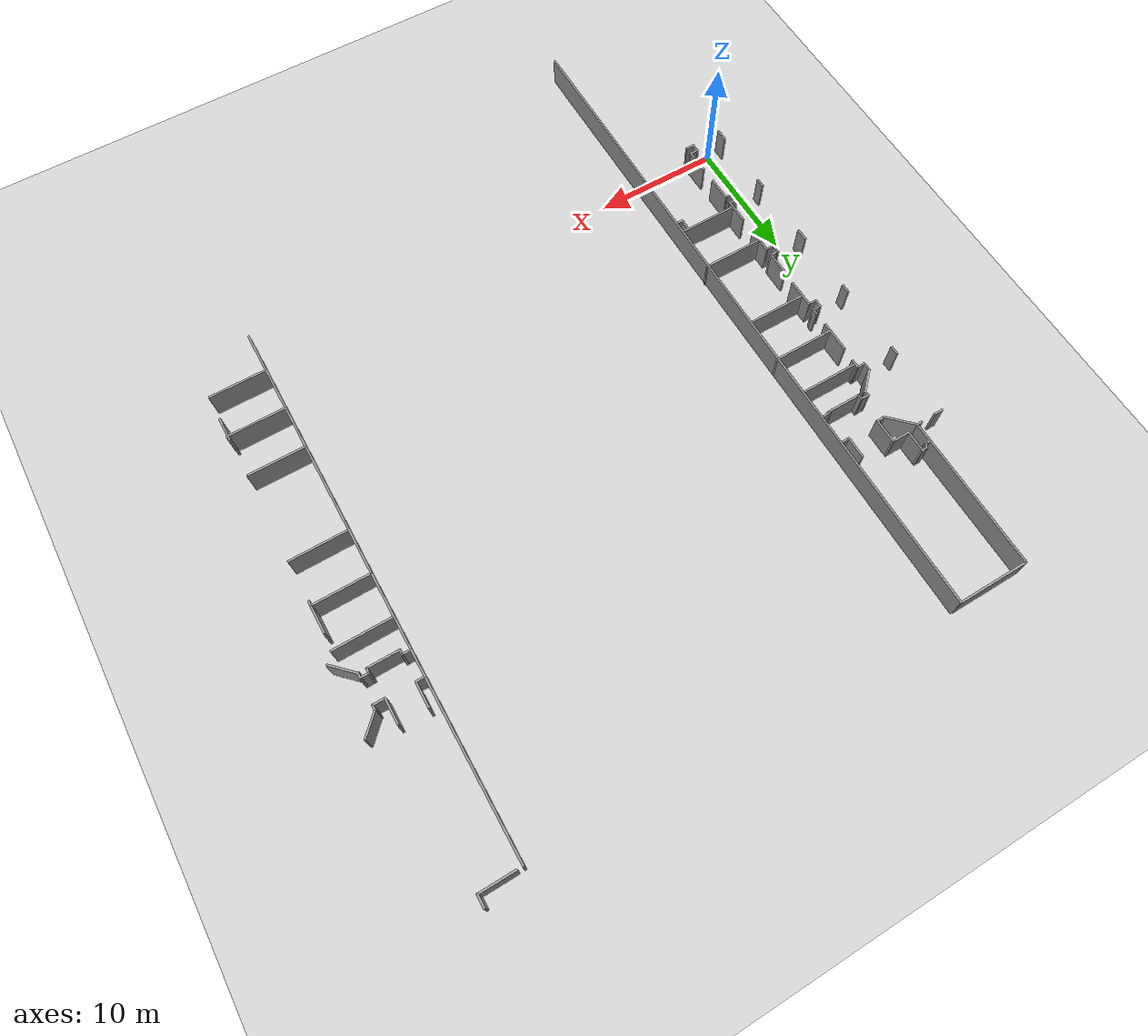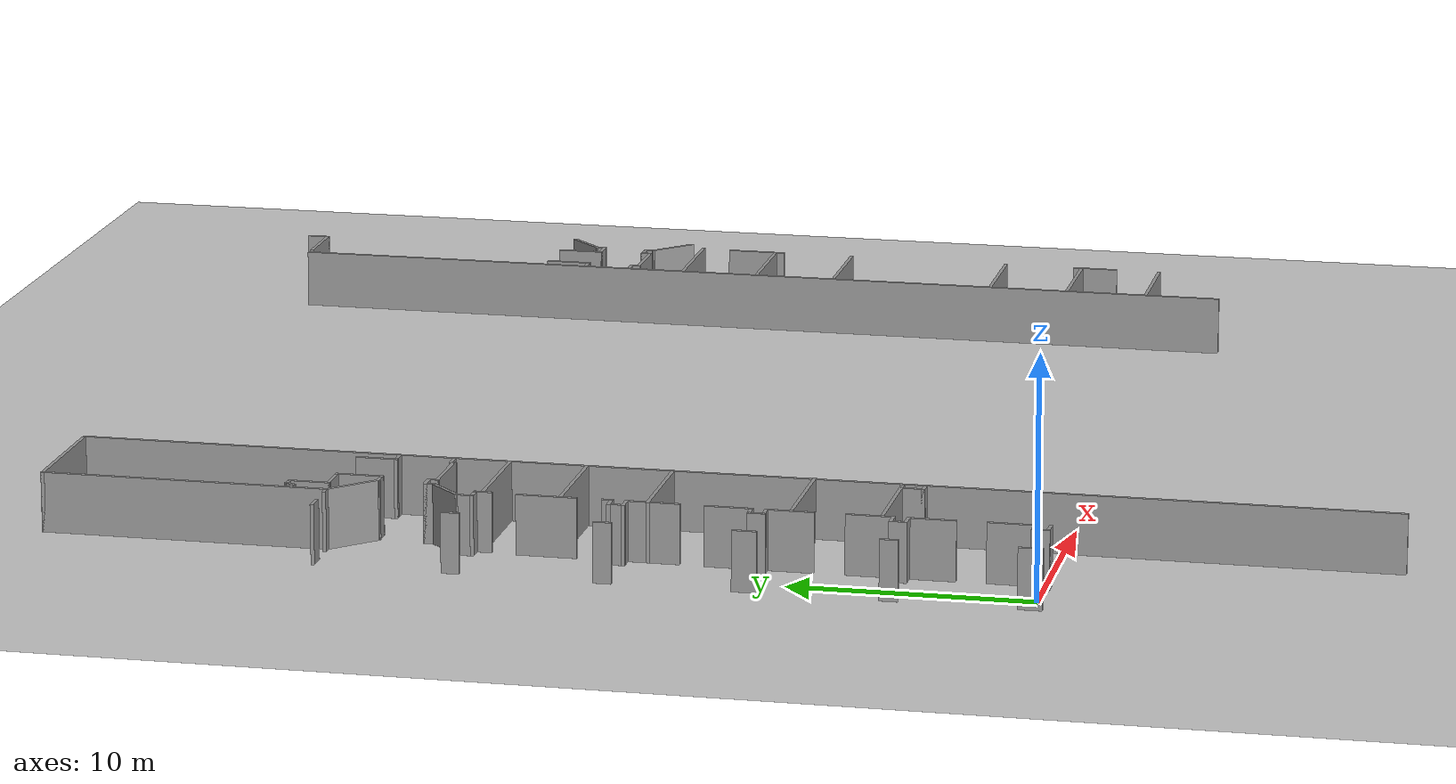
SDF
<sdf version="1.6">
 <world name="default">
  <model name="ground_plane">
   <static>1</static>
   <link name="link">
    <collision name="collision">
     <geometry><plane><normal>0 0 1</normal><size>200 100</size></plane></geometry>
     <surface><friction><ode><mu>100</mu><mu2>50</mu2></ode></friction></surface>
    </collision>
    <visual name="visual">
     <cast_shadows>0</cast_shadows>
     <geometry><plane><normal>0 0 1</normal><size>200 100</size></plane></geometry>
     <material>
      <script><uri>file://media/materials/scripts/gazebo.material</uri><name>Gazebo/Grey</name></script>
     </material>
    </visual>
   </link>
  </model>
  <model name="LuterFloorPlan">
   <pose>-8.27259 7.62647 0 0 -0 0</pose>
   <link name="Wall_1024">
    <collision name="Wall_1024_Collision">
     <geometry><box><size>42.25 0.15 2.5</size></box></geometry>
     <pose>0 0 1.25 0 -0 0</pose>
    </collision>
    <visual name="Wall_1024_Visual">
     <pose>0 0 1.25 0 -0 0</pose>
     <geometry><box><size>42.25 0.15 2.5</size></box></geometry>
     <material>
      <script><uri>file://media/materials/scripts/gazebo.material</uri><name>Gazebo/Grey</name></script>
      <ambient>1 1 1 1</ambient>
     </material>
    </visual>
    <pose>47.5967 11.6687 0 0 -0 1.5708</pose>
   </link>
   <link name="Wall_1026">
    <collision name="Wall_1026_Collision">
     <geometry><box><size>2.75 0.15 2.5</size></box></geometry>
     <pose>0 0 1.25 0 -0 0</pose>
    </collision>
    <visual name="Wall_1026_Visual">
     <pose>0 0 1.25 0 -0 0</pose>
     <geometry><box><size>2.75 0.15 2.5</size></box></geometry>
     <material>
      <script><uri>file://media/materials/scripts/gazebo.material</uri><name>Gazebo/Grey</name></script>
      <ambient>1 1 1 1</ambient>
     </material>
    </visual>
    <pose>49.3708 32.7214 0 0 -0 0</pose>
   </link>
   <link name="Wall_1027">
    <collision name="Wall_1027_Collision">
     <geometry><box><size>1 0.15 2.5</size></box></geometry>
     <pose>0 0 1.25 0 -0 0</pose>
    </collision>
    <visual name="Wall_1027_Visual">
     <pose>0 0 1.25 0 -0 0</pose>
     <geometry><box><size>1 0.15 2.5</size></box></geometry>
     <material>
      <script><uri>file://media/materials/scripts/gazebo.material</uri><name>Gazebo/Grey</name></script>
      <ambient>1 1 1 1</ambient>
     </material>
    </visual>
    <pose>50.6708 33.1464 0 0 -0 1.5708</pose>
   </link>
   <link name="Wall_1067">
    <collision name="Wall_1067_Collision">
     <geometry><box><size>4.5 0.15 2.5</size></box></geometry>
     <pose>0 0 1.25 0 -0 0</pose>
    </collision>
    <visual name="Wall_1067_Visual">
     <pose>0 0 1.25 0 -0 0</pose>
     <geometry><box><size>4.5 0.15 2.5</size></box></geometry>
     <material>
      <script><uri>file://media/materials/scripts/gazebo.material</uri><name>Gazebo/Grey</name></script>
      <ambient>1 1 1 1</ambient>
     </material>
    </visual>
    <pose>49.7886 -6.13574 0 0 -0 0</pose>
   </link>
   <link name="Wall_1083">
    <collision name="Wall_1083_Collision">
     <geometry><box><size>2 0.15 2.5</size></box></geometry>
     <pose>0 0 1.25 0 -0 0</pose>
    </collision>
    <visual name="Wall_1083_Visual">
     <pose>0 0 1.25 0 -0 0</pose>
     <geometry><box><size>2 0.15 2.5</size></box></geometry>
     <material>
      <script><uri>file://media/materials/scripts/gazebo.material</uri><name>Gazebo/Grey</name></script>
      <ambient>1 1 1 1</ambient>
     </material>
    </visual>
    <pose>51.9891 -3.19587 0 0 -0 1.5708</pose>
   </link>
   <link name="Wall_1090">
    <collision name="Wall_1090_Collision">
     <geometry><box><size>4.5 0.15 2.5</size></box></geometry>
     <pose>0 0 1.25 0 -0 0</pose>
    </collision>
    <visual name="Wall_1090_Visual">
     <pose>0 0 1.25 0 -0 0</pose>
     <geometry><box><size>4.5 0.15 2.5</size></box></geometry>
     <material>
      <script><uri>file://media/materials/scripts/gazebo.material</uri><name>Gazebo/Grey</name></script>
      <ambient>1 1 1 1</ambient>
     </material>
    </visual>
    <pose>49.8815 -2.57607 0 0 -0 0</pose>
   </link>
   <link name="Wall_1109">
    <collision name="Wall_1109_Collision">
     <geometry><box><size>4.5 0.15 2.5</size></box></geometry>
     <pose>0 0 1.25 0 -0 0</pose>
    </collision>
    <visual name="Wall_1109_Visual">
     <pose>0 0 1.25 0 -0 0</pose>
     <geometry><box><size>4.5 0.15 2.5</size></box></geometry>
     <material>
      <script><uri>file://media/materials/scripts/gazebo.material</uri><name>Gazebo/Grey</name></script>
      <ambient>1 1 1 1</ambient>
     </material>
    </visual>
    <pose>49.7844 0.926516 0 0 -0 0</pose>
   </link>
   <link name="Wall_1125">
    <collision name="Wall_1125_Collision">
     <geometry><box><size>4.5 0.15 2.5</size></box></geometry>
     <pose>0 0 1.25 0 -0 0</pose>
    </collision>
    <visual name="Wall_1125_Visual">
     <pose>0 0 1.25 0 -0 0</pose>
     <geometry><box><size>4.5 0.15 2.5</size></box></geometry>
     <material>
      <script><uri>file://media/materials/scripts/gazebo.material</uri><name>Gazebo/Grey</name></script>
      <ambient>1 1 1 1</ambient>
     </material>
    </visual>
    <pose>49.8376 8.12345 0 0 -0 0</pose>
   </link>
   <link name="Wall_1127">
    <collision name="Wall_1127_Collision">
     <geometry><box><size>4.5 0.15 2.5</size></box></geometry>
     <pose>0 0 1.25 0 -0 0</pose>
    </collision>
    <visual name="Wall_1127_Visual">
     <pose>0 0 1.25 0 -0 0</pose>
     <geometry><box><size>4.5 0.15 2.5</size></box></geometry>
     <material>
      <script><uri>file://media/materials/scripts/gazebo.material</uri><name>Gazebo/Grey</name></script>
      <ambient>1 1 1 1</ambient>
     </material>
    </visual>
    <pose>49.807 11.6872 0 0 -0 0</pose>
   </link>
   <link name="Wall_1128">
    <collision name="Wall_1128_Collision">
     <geometry><box><size>0.5 0.15 2.5</size></box></geometry>
     <pose>0 0 1.25 0 -0 0</pose>
    </collision>
    <visual name="Wall_1128_Visual">
     <pose>0 0 1.25 0 -0 0</pose>
     <geometry><box><size>0.5 0.15 2.5</size></box></geometry>
     <material>
      <script><uri>file://media/materials/scripts/gazebo.material</uri><name>Gazebo/Grey</name></script>
      <ambient>1 1 1 1</ambient>
     </material>
    </visual>
    <pose>51.982 11.5122 0 0 0 -1.5708</pose>
   </link>
   <link name="Wall_1130">
    <collision name="Wall_1130_Collision">
     <geometry><box><size>2.25 0.15 2.5</size></box></geometry>
     <pose>0 0 1.25 0 -0 0</pose>
    </collision>
    <visual name="Wall_1130_Visual">
     <pose>0 0 1.25 0 -0 0</pose>
     <geometry><box><size>2.25 0.15 2.5</size></box></geometry>
     <material>
      <script><uri>file://media/materials/scripts/gazebo.material</uri><name>Gazebo/Grey</name></script>
      <ambient>1 1 1 1</ambient>
     </material>
    </visual>
    <pose>51.982 12.7372 0 0 -0 1.5708</pose>
   </link>
   <link name="Wall_1132">
    <collision name="Wall_1132_Collision">
     <geometry><box><size>4.5 0.15 2.5</size></box></geometry>
     <pose>0 0 1.25 0 -0 0</pose>
    </collision>
    <visual name="Wall_1132_Visual">
     <pose>0 0 1.25 0 -0 0</pose>
     <geometry><box><size>4.5 0.15 2.5</size></box></geometry>
     <material>
      <script><uri>file://media/materials/scripts/gazebo.material</uri><name>Gazebo/Grey</name></script>
      <ambient>1 1 1 1</ambient>
     </material>
    </visual>
    <pose>49.8988 15.1133 0 0 -0 0</pose>
   </link>
   <link name="Wall_1138">
    <collision name="Wall_1138_Collision">
     <geometry><box><size>2.25 0.15 2.5</size></box></geometry>
     <pose>0 0 1.25 0 -0 0</pose>
    </collision>
    <visual name="Wall_1138_Visual">
     <pose>0 0 1.25 0 -0 0</pose>
     <geometry><box><size>2.25 0.15 2.5</size></box></geometry>
     <material>
      <script><uri>file://media/materials/scripts/gazebo.material</uri><name>Gazebo/Grey</name></script>
      <ambient>1 1 1 1</ambient>
     </material>
    </visual>
    <pose>51.9313 16.5558 0 0 -0 2.35619</pose>
   </link>
   <link name="Wall_1139">
    <collision name="Wall_1139_Collision">
     <geometry><box><size>0.5 0.15 2.5</size></box></geometry>
     <pose>0 0 1.25 0 -0 0</pose>
    </collision>
    <visual name="Wall_1139_Visual">
     <pose>0 0 1.25 0 -0 0</pose>
     <geometry><box><size>0.5 0.15 2.5</size></box></geometry>
     <material>
      <script><uri>file://media/materials/scripts/gazebo.material</uri><name>Gazebo/Grey</name></script>
      <ambient>1 1 1 1</ambient>
     </material>
    </visual>
    <pose>51.1889 17.4732 0 0 -0 1.5708</pose>
   </link>
   <link name="Wall_1140">
    <collision name="Wall_1140_Collision">
     <geometry><box><size>0.75 0.15 2.5</size></box></geometry>
     <pose>0 0 1.25 0 -0 0</pose>
    </collision>
    <visual name="Wall_1140_Visual">
     <pose>0 0 1.25 0 -0 0</pose>
     <geometry><box><size>0.75 0.15 2.5</size></box></geometry>
     <material>
      <script><uri>file://media/materials/scripts/gazebo.material</uri><name>Gazebo/Grey</name></script>
      <ambient>1 1 1 1</ambient>
     </material>
    </visual>
    <pose>50.8889 17.6482 0 0 -0 3.14159</pose>
   </link>
   <link name="Wall_1141">
    <collision name="Wall_1141_Collision">
     <geometry><box><size>0.5 0.15 2.5</size></box></geometry>
     <pose>0 0 1.25 0 -0 0</pose>
    </collision>
    <visual name="Wall_1141_Visual">
     <pose>0 0 1.25 0 -0 0</pose>
     <geometry><box><size>0.5 0.15 2.5</size></box></geometry>
     <material>
      <script><uri>file://media/materials/scripts/gazebo.material</uri><name>Gazebo/Grey</name></script>
      <ambient>1 1 1 1</ambient>
     </material>
    </visual>
    <pose>50.5889 17.4732 0 0 0 -1.5708</pose>
   </link>
   <link name="Wall_1142">
    <collision name="Wall_1142_Collision">
     <geometry><box><size>2.5 0.15 2.5</size></box></geometry>
     <pose>0 0 1.25 0 -0 0</pose>
    </collision>
    <visual name="Wall_1142_Visual">
     <pose>0 0 1.25 0 -0 0</pose>
     <geometry><box><size>2.5 0.15 2.5</size></box></geometry>
     <material>
      <script><uri>file://media/materials/scripts/gazebo.material</uri><name>Gazebo/Grey</name></script>
      <ambient>1 1 1 1</ambient>
     </material>
    </visual>
    <pose>49.4139 17.2982 0 0 -0 3.14159</pose>
   </link>
   <link name="Wall_1146">
    <collision name="Wall_1146_Collision">
     <geometry><box><size>0.5 0.15 2.5</size></box></geometry>
     <pose>0 0 1.25 0 -0 0</pose>
    </collision>
    <visual name="Wall_1146_Visual">
     <pose>0 0 1.25 0 -0 0</pose>
     <geometry><box><size>0.5 0.15 2.5</size></box></geometry>
     <material>
      <script><uri>file://media/materials/scripts/gazebo.material</uri><name>Gazebo/Grey</name></script>
      <ambient>1 1 1 1</ambient>
     </material>
    </visual>
    <pose>48.2389 17.4732 0 0 -0 1.5708</pose>
   </link>
   <link name="Wall_1147">
    <collision name="Wall_1147_Collision">
     <geometry><box><size>0.75 0.15 2.5</size></box></geometry>
     <pose>0 0 1.25 0 -0 0</pose>
    </collision>
    <visual name="Wall_1147_Visual">
     <pose>0 0 1.25 0 -0 0</pose>
     <geometry><box><size>0.75 0.15 2.5</size></box></geometry>
     <material>
      <script><uri>file://media/materials/scripts/gazebo.material</uri><name>Gazebo/Grey</name></script>
      <ambient>1 1 1 1</ambient>
     </material>
    </visual>
    <pose>47.9389 17.6482 0 0 -0 3.14159</pose>
   </link>
   <link name="Wall_1166">
    <collision name="Wall_1166_Collision">
     <geometry><box><size>0.75 0.15 2.5</size></box></geometry>
     <pose>0 0 1.25 0 -0 0</pose>
    </collision>
    <visual name="Wall_1166_Visual">
     <pose>0 0 1.25 0 -0 0</pose>
     <geometry><box><size>0.75 0.15 2.5</size></box></geometry>
     <material>
      <script><uri>file://media/materials/scripts/gazebo.material</uri><name>Gazebo/Grey</name></script>
      <ambient>1 1 1 1</ambient>
     </material>
    </visual>
    <pose>47.9579 19.6633 0 0 -0 0</pose>
   </link>
   <link name="Wall_1167">
    <collision name="Wall_1167_Collision">
     <geometry><box><size>2 0.15 2.5</size></box></geometry>
     <pose>0 0 1.25 0 -0 0</pose>
    </collision>
    <visual name="Wall_1167_Visual">
     <pose>0 0 1.25 0 -0 0</pose>
     <geometry><box><size>2 0.15 2.5</size></box></geometry>
     <material>
      <script><uri>file://media/materials/scripts/gazebo.material</uri><name>Gazebo/Grey</name></script>
      <ambient>1 1 1 1</ambient>
     </material>
    </visual>
    <pose>48.2579 20.5883 0 0 -0 1.5708</pose>
   </link>
   <link name="Wall_1169">
    <collision name="Wall_1169_Collision">
     <geometry><box><size>2 0.15 2.5</size></box></geometry>
     <pose>0 0 1.25 0 -0 0</pose>
    </collision>
    <visual name="Wall_1169_Visual">
     <pose>0 0 1.25 0 -0 0</pose>
     <geometry><box><size>2 0.15 2.5</size></box></geometry>
     <material>
      <script><uri>file://media/materials/scripts/gazebo.material</uri><name>Gazebo/Grey</name></script>
      <ambient>1 1 1 1</ambient>
     </material>
    </visual>
    <pose>50.3977 20.5338 0 0 0 -1.5708</pose>
   </link>
   <link name="Wall_1170">
    <collision name="Wall_1170_Collision">
     <geometry><box><size>1 0.15 2.5</size></box></geometry>
     <pose>0 0 1.25 0 -0 0</pose>
    </collision>
    <visual name="Wall_1170_Visual">
     <pose>0 0 1.25 0 -0 0</pose>
     <geometry><box><size>1 0.15 2.5</size></box></geometry>
     <material>
      <script><uri>file://media/materials/scripts/gazebo.material</uri><name>Gazebo/Grey</name></script>
      <ambient>1 1 1 1</ambient>
     </material>
    </visual>
    <pose>50.8227 19.6088 0 0 -0 0</pose>
   </link>
   <link name="Wall_1171">
    <collision name="Wall_1171_Collision">
     <geometry><box><size>0.5 0.15 2.5</size></box></geometry>
     <pose>0 0 1.25 0 -0 0</pose>
    </collision>
    <visual name="Wall_1171_Visual">
     <pose>0 0 1.25 0 -0 0</pose>
     <geometry><box><size>0.5 0.15 2.5</size></box></geometry>
     <material>
      <script><uri>file://media/materials/scripts/gazebo.material</uri><name>Gazebo/Grey</name></script>
      <ambient>1 1 1 1</ambient>
     </material>
    </visual>
    <pose>51.2477 19.7838 0 0 -0 1.5708</pose>
   </link>
   <link name="Wall_1172">
    <collision name="Wall_1172_Collision">
     <geometry><box><size>2 0.15 2.5</size></box></geometry>
     <pose>0 0 1.25 0 -0 0</pose>
    </collision>
    <visual name="Wall_1172_Visual">
     <pose>0 0 1.25 0 -0 0</pose>
     <geometry><box><size>2 0.15 2.5</size></box></geometry>
     <material>
      <script><uri>file://media/materials/scripts/gazebo.material</uri><name>Gazebo/Grey</name></script>
      <ambient>1 1 1 1</ambient>
     </material>
    </visual>
    <pose>51.9018 20.6129 0 0 -0 0.785398</pose>
   </link>
   <link name="Wall_634">
    <collision name="Wall_634_Collision">
     <geometry><box><size>12 0.15 2.5</size></box></geometry>
     <pose>0 0 1.25 0 -0 0</pose>
    </collision>
    <visual name="Wall_634_Visual">
     <pose>0 0 1.25 0 -0 0</pose>
     <geometry><box><size>12 0.15 2.5</size></box></geometry>
     <material>
      <script><uri>file://media/materials/scripts/gazebo.material</uri><name>Gazebo/Grey</name></script>
      <ambient>1 1 1 1</ambient>
     </material>
    </visual>
    <pose>9.57058 27.2459 0 0 0 -1.5708</pose>
   </link>
   <link name="Wall_636">
    <collision name="Wall_636_Collision">
     <geometry><box><size>5.5 0.15 2.5</size></box></geometry>
     <pose>0 0 1.25 0 -0 0</pose>
    </collision>
    <visual name="Wall_636_Visual">
     <pose>0 0 1.25 0 -0 0</pose>
     <geometry><box><size>5.5 0.15 2.5</size></box></geometry>
     <material>
      <script><uri>file://media/materials/scripts/gazebo.material</uri><name>Gazebo/Grey</name></script>
      <ambient>1 1 1 1</ambient>
     </material>
    </visual>
    <pose>12.2456 33.1709 0 0 -0 0</pose>
   </link>
   <link name="Wall_638">
    <collision name="Wall_638_Collision">
     <geometry><box><size>54.5 0.15 2.5</size></box></geometry>
     <pose>0 0 1.25 0 -0 0</pose>
    </collision>
    <visual name="Wall_638_Visual">
     <pose>0 0 1.25 0 -0 0</pose>
     <geometry><box><size>54.5 0.15 2.5</size></box></geometry>
     <material>
      <script><uri>file://media/materials/scripts/gazebo.material</uri><name>Gazebo/Grey</name></script>
      <ambient>1 1 1 1</ambient>
     </material>
    </visual>
    <pose>15.0566 5.95469 0 0 -0 1.5708</pose>
   </link>
   <link name="Wall_641">
    <collision name="Wall_641_Collision">
     <geometry><box><size>0.5 0.15 2.5</size></box></geometry>
     <pose>0 0 1.25 0 -0 0</pose>
    </collision>
    <visual name="Wall_641_Visual">
     <pose>0 0 1.25 0 -0 0</pose>
     <geometry><box><size>0.5 0.15 2.5</size></box></geometry>
     <material>
      <script><uri>file://media/materials/scripts/gazebo.material</uri><name>Gazebo/Grey</name></script>
      <ambient>1 1 1 1</ambient>
     </material>
    </visual>
    <pose>9.39558 21.3209 0 0 -0 3.14159</pose>
   </link>
   <link name="Wall_643">
    <collision name="Wall_643_Collision">
     <geometry><box><size>0.75 0.15 2.5</size></box></geometry>
     <pose>0 0 1.25 0 -0 0</pose>
    </collision>
    <visual name="Wall_643_Visual">
     <pose>0 0 1.25 0 -0 0</pose>
     <geometry><box><size>0.75 0.15 2.5</size></box></geometry>
     <material>
      <script><uri>file://media/materials/scripts/gazebo.material</uri><name>Gazebo/Grey</name></script>
      <ambient>1 1 1 1</ambient>
     </material>
    </visual>
    <pose>7.67275 21.3013 0 0 -0 0</pose>
   </link>
   <link name="Wall_657">
    <collision name="Wall_657_Collision">
     <geometry><box><size>2.5 0.15 2.5</size></box></geometry>
     <pose>0 0 1.25 0 -0 0</pose>
    </collision>
    <visual name="Wall_657_Visual">
     <pose>0 0 1.25 0 -0 0</pose>
     <geometry><box><size>2.5 0.15 2.5</size></box></geometry>
     <material>
      <script><uri>file://media/materials/scripts/gazebo.material</uri><name>Gazebo/Grey</name></script>
      <ambient>1 1 1 1</ambient>
     </material>
    </visual>
    <pose>10.4014 20.49 0 0 0 -0.785398</pose>
   </link>
   <link name="Wall_658">
    <collision name="Wall_658_Collision">
     <geometry><box><size>0.75 0.15 2.5</size></box></geometry>
     <pose>0 0 1.25 0 -0 0</pose>
    </collision>
    <visual name="Wall_658_Visual">
     <pose>0 0 1.25 0 -0 0</pose>
     <geometry><box><size>0.75 0.15 2.5</size></box></geometry>
     <material>
      <script><uri>file://media/materials/scripts/gazebo.material</uri><name>Gazebo/Grey</name></script>
      <ambient>1 1 1 1</ambient>
     </material>
    </visual>
    <pose>11.5323 19.6592 0 0 -0 0</pose>
   </link>
   <link name="Wall_660">
    <collision name="Wall_660_Collision">
     <geometry><box><size>0.75 0.15 2.5</size></box></geometry>
     <pose>0 0 1.25 0 -0 0</pose>
    </collision>
    <visual name="Wall_660_Visual">
     <pose>0 0 1.25 0 -0 0</pose>
     <geometry><box><size>0.75 0.15 2.5</size></box></geometry>
     <material>
      <script><uri>file://media/materials/scripts/gazebo.material</uri><name>Gazebo/Grey</name></script>
      <ambient>1 1 1 1</ambient>
     </material>
    </visual>
    <pose>14.6878 19.744 0 0 -0 3.14159</pose>
   </link>
   <link name="Wall_661">
    <collision name="Wall_661_Collision">
     <geometry><box><size>1.75 0.15 2.5</size></box></geometry>
     <pose>0 0 1.25 0 -0 0</pose>
    </collision>
    <visual name="Wall_661_Visual">
     <pose>0 0 1.25 0 -0 0</pose>
     <geometry><box><size>1.75 0.15 2.5</size></box></geometry>
     <material>
      <script><uri>file://media/materials/scripts/gazebo.material</uri><name>Gazebo/Grey</name></script>
      <ambient>1 1 1 1</ambient>
     </material>
    </visual>
    <pose>14.3878 20.544 0 0 -0 1.5708</pose>
   </link>
   <link name="Wall_663">
    <collision name="Wall_663_Collision">
     <geometry><box><size>2 0.15 2.5</size></box></geometry>
     <pose>0 0 1.25 0 -0 0</pose>
    </collision>
    <visual name="Wall_663_Visual">
     <pose>0 0 1.25 0 -0 0</pose>
     <geometry><box><size>2 0.15 2.5</size></box></geometry>
     <material>
      <script><uri>file://media/materials/scripts/gazebo.material</uri><name>Gazebo/Grey</name></script>
      <ambient>1 1 1 1</ambient>
     </material>
    </visual>
    <pose>11.8323 20.5842 0 0 -0 1.5708</pose>
   </link>
   <link name="Wall_664">
    <collision name="Wall_664_Collision">
     <geometry><box><size>1.5 0.15 2.5</size></box></geometry>
     <pose>0 0 1.25 0 -0 0</pose>
    </collision>
    <visual name="Wall_664_Visual">
     <pose>0 0 1.25 0 -0 0</pose>
     <geometry><box><size>1.5 0.15 2.5</size></box></geometry>
     <material>
      <script><uri>file://media/materials/scripts/gazebo.material</uri><name>Gazebo/Grey</name></script>
      <ambient>1 1 1 1</ambient>
     </material>
    </visual>
    <pose>11.1573 21.5092 0 0 -0 3.14159</pose>
   </link>
   <link name="Wall_665">
    <collision name="Wall_665_Collision">
     <geometry><box><size>1.75 0.15 2.5</size></box></geometry>
     <pose>0 0 1.25 0 -0 0</pose>
    </collision>
    <visual name="Wall_665_Visual">
     <pose>0 0 1.25 0 -0 0</pose>
     <geometry><box><size>1.75 0.15 2.5</size></box></geometry>
     <material>
      <script><uri>file://media/materials/scripts/gazebo.material</uri><name>Gazebo/Grey</name></script>
      <ambient>1 1 1 1</ambient>
     </material>
    </visual>
    <pose>10.4823 22.3092 0 0 -0 1.5708</pose>
   </link>
   <link name="Wall_667">
    <collision name="Wall_667_Collision">
     <geometry><box><size>0.5 0.15 2.5</size></box></geometry>
     <pose>0 0 1.25 0 -0 0</pose>
    </collision>
    <visual name="Wall_667_Visual">
     <pose>0 0 1.25 0 -0 0</pose>
     <geometry><box><size>0.5 0.15 2.5</size></box></geometry>
     <material>
      <script><uri>file://media/materials/scripts/gazebo.material</uri><name>Gazebo/Grey</name></script>
      <ambient>1 1 1 1</ambient>
     </material>
    </visual>
    <pose>10.3073 23.1092 0 0 -0 3.14159</pose>
   </link>
   <link name="Wall_668">
    <collision name="Wall_668_Collision">
     <geometry><box><size>0.5 0.15 2.5</size></box></geometry>
     <pose>0 0 1.25 0 -0 0</pose>
    </collision>
    <visual name="Wall_668_Visual">
     <pose>0 0 1.25 0 -0 0</pose>
     <geometry><box><size>0.5 0.15 2.5</size></box></geometry>
     <material>
      <script><uri>file://media/materials/scripts/gazebo.material</uri><name>Gazebo/Grey</name></script>
      <ambient>1 1 1 1</ambient>
     </material>
    </visual>
    <pose>10.0448 22.9576 0 0 0 -2.0944</pose>
   </link>
   <link name="Wall_669">
    <collision name="Wall_669_Collision">
     <geometry><box><size>0.5 0.15 2.5</size></box></geometry>
     <pose>0 0 1.25 0 -0 0</pose>
    </collision>
    <visual name="Wall_669_Visual">
     <pose>0 0 1.25 0 -0 0</pose>
     <geometry><box><size>0.5 0.15 2.5</size></box></geometry>
     <material>
      <script><uri>file://media/materials/scripts/gazebo.material</uri><name>Gazebo/Grey</name></script>
      <ambient>1 1 1 1</ambient>
     </material>
    </visual>
    <pose>9.78228 22.8061 0 0 -0 3.14159</pose>
   </link>
   <link name="Wall_678">
    <collision name="Wall_678_Collision">
     <geometry><box><size>0.75 0.15 2.5</size></box></geometry>
     <pose>0 0 1.25 0 -0 0</pose>
    </collision>
    <visual name="Wall_678_Visual">
     <pose>0 0 1.25 0 -0 0</pose>
     <geometry><box><size>0.75 0.15 2.5</size></box></geometry>
     <material>
      <script><uri>file://media/materials/scripts/gazebo.material</uri><name>Gazebo/Grey</name></script>
      <ambient>1 1 1 1</ambient>
     </material>
    </visual>
    <pose>7.33077 15.6663 0 0 0 -1.5708</pose>
   </link>
   <link name="Wall_682">
    <collision name="Wall_682_Collision">
     <geometry><box><size>0.75 0.15 2.5</size></box></geometry>
     <pose>0 0 1.25 0 -0 0</pose>
    </collision>
    <visual name="Wall_682_Visual">
     <pose>0 0 1.25 0 -0 0</pose>
     <geometry><box><size>0.75 0.15 2.5</size></box></geometry>
     <material>
      <script><uri>file://media/materials/scripts/gazebo.material</uri><name>Gazebo/Grey</name></script>
      <ambient>1 1 1 1</ambient>
     </material>
    </visual>
    <pose>14.6874 17.4276 0 0 -0 3.14159</pose>
   </link>
   <link name="Wall_683">
    <collision name="Wall_683_Collision">
     <geometry><box><size>0.25 0.15 2.5</size></box></geometry>
     <pose>0 0 1.25 0 -0 0</pose>
    </collision>
    <visual name="Wall_683_Visual">
     <pose>0 0 1.25 0 -0 0</pose>
     <geometry><box><size>0.25 0.15 2.5</size></box></geometry>
     <material>
      <script><uri>file://media/materials/scripts/gazebo.material</uri><name>Gazebo/Grey</name></script>
      <ambient>1 1 1 1</ambient>
     </material>
    </visual>
    <pose>14.3874 17.3776 0 0 0 -1.5708</pose>
   </link>
   <link name="Wall_684">
    <collision name="Wall_684_Collision">
     <geometry><box><size>2.75 0.15 2.5</size></box></geometry>
     <pose>0 0 1.25 0 -0 0</pose>
    </collision>
    <visual name="Wall_684_Visual">
     <pose>0 0 1.25 0 -0 0</pose>
     <geometry><box><size>2.75 0.15 2.5</size></box></geometry>
     <material>
      <script><uri>file://media/materials/scripts/gazebo.material</uri><name>Gazebo/Grey</name></script>
      <ambient>1 1 1 1</ambient>
     </material>
    </visual>
    <pose>13.0874 17.3276 0 0 -0 3.14159</pose>
   </link>
   <link name="Wall_685">
    <collision name="Wall_685_Collision">
     <geometry><box><size>0.5 0.15 2.5</size></box></geometry>
     <pose>0 0 1.25 0 -0 0</pose>
    </collision>
    <visual name="Wall_685_Visual">
     <pose>0 0 1.25 0 -0 0</pose>
     <geometry><box><size>0.5 0.15 2.5</size></box></geometry>
     <material>
      <script><uri>file://media/materials/scripts/gazebo.material</uri><name>Gazebo/Grey</name></script>
      <ambient>1 1 1 1</ambient>
     </material>
    </visual>
    <pose>11.7874 17.5026 0 0 -0 1.5708</pose>
   </link>
   <link name="Wall_686">
    <collision name="Wall_686_Collision">
     <geometry><box><size>0.75 0.15 2.5</size></box></geometry>
     <pose>0 0 1.25 0 -0 0</pose>
    </collision>
    <visual name="Wall_686_Visual">
     <pose>0 0 1.25 0 -0 0</pose>
     <geometry><box><size>0.75 0.15 2.5</size></box></geometry>
     <material>
      <script><uri>file://media/materials/scripts/gazebo.material</uri><name>Gazebo/Grey</name></script>
      <ambient>1 1 1 1</ambient>
     </material>
    </visual>
    <pose>11.4874 17.6776 0 0 -0 3.14159</pose>
   </link>
   <link name="Wall_687">
    <collision name="Wall_687_Collision">
     <geometry><box><size>0.5 0.15 2.5</size></box></geometry>
     <pose>0 0 1.25 0 -0 0</pose>
    </collision>
    <visual name="Wall_687_Visual">
     <pose>0 0 1.25 0 -0 0</pose>
     <geometry><box><size>0.5 0.15 2.5</size></box></geometry>
     <material>
      <script><uri>file://media/materials/scripts/gazebo.material</uri><name>Gazebo/Grey</name></script>
      <ambient>1 1 1 1</ambient>
     </material>
    </visual>
    <pose>11.1874 17.5026 0 0 0 -1.5708</pose>
   </link>
   <link name="Wall_688">
    <collision name="Wall_688_Collision">
     <geometry><box><size>2 0.15 2.5</size></box></geometry>
     <pose>0 0 1.25 0 -0 0</pose>
    </collision>
    <visual name="Wall_688_Visual">
     <pose>0 0 1.25 0 -0 0</pose>
     <geometry><box><size>2 0.15 2.5</size></box></geometry>
     <material>
      <script><uri>file://media/materials/scripts/gazebo.material</uri><name>Gazebo/Grey</name></script>
      <ambient>1 1 1 1</ambient>
     </material>
    </visual>
    <pose>10.5333 16.6735 0 0 0 -2.35619</pose>
   </link>
   <link name="Wall_689">
    <collision name="Wall_689_Collision">
     <geometry><box><size>0.75 0.15 2.5</size></box></geometry>
     <pose>0 0 1.25 0 -0 0</pose>
    </collision>
    <visual name="Wall_689_Visual">
     <pose>0 0 1.25 0 -0 0</pose>
     <geometry><box><size>0.75 0.15 2.5</size></box></geometry>
     <material>
      <script><uri>file://media/materials/scripts/gazebo.material</uri><name>Gazebo/Grey</name></script>
      <ambient>1 1 1 1</ambient>
     </material>
    </visual>
    <pose>9.87924 15.7194 0 0 0 -1.5708</pose>
   </link>
   <link name="Wall_690">
    <collision name="Wall_690_Collision">
     <geometry><box><size>0.75 0.15 2.5</size></box></geometry>
     <pose>0 0 1.25 0 -0 0</pose>
    </collision>
    <visual name="Wall_690_Visual">
     <pose>0 0 1.25 0 -0 0</pose>
     <geometry><box><size>0.75 0.15 2.5</size></box></geometry>
     <material>
      <script><uri>file://media/materials/scripts/gazebo.material</uri><name>Gazebo/Grey</name></script>
      <ambient>1 1 1 1</ambient>
     </material>
    </visual>
    <pose>10.1792 15.4194 0 0 -0 0</pose>
   </link>
   <link name="Wall_691">
    <collision name="Wall_691_Collision">
     <geometry><box><size>0.75 0.15 2.5</size></box></geometry>
     <pose>0 0 1.25 0 -0 0</pose>
    </collision>
    <visual name="Wall_691_Visual">
     <pose>0 0 1.25 0 -0 0</pose>
     <geometry><box><size>0.75 0.15 2.5</size></box></geometry>
     <material>
      <script><uri>file://media/materials/scripts/gazebo.material</uri><name>Gazebo/Grey</name></script>
      <ambient>1 1 1 1</ambient>
     </material>
    </visual>
    <pose>10.4792 15.1194 0 0 0 -1.5708</pose>
   </link>
   <link name="Wall_693">
    <collision name="Wall_693_Collision">
     <geometry><box><size>4.5 0.15 2.5</size></box></geometry>
     <pose>0 0 1.25 0 -0 0</pose>
    </collision>
    <visual name="Wall_693_Visual">
     <pose>0 0 1.25 0 -0 0</pose>
     <geometry><box><size>4.5 0.15 2.5</size></box></geometry>
     <material>
      <script><uri>file://media/materials/scripts/gazebo.material</uri><name>Gazebo/Grey</name></script>
      <ambient>1 1 1 1</ambient>
     </material>
    </visual>
    <pose>12.7862 15.1262 0 0 -0 3.14159</pose>
   </link>
   <link name="Wall_697">
    <collision name="Wall_697_Collision">
     <geometry><box><size>0.75 0.15 2.5</size></box></geometry>
     <pose>0 0 1.25 0 -0 0</pose>
    </collision>
    <visual name="Wall_697_Visual">
     <pose>0 0 1.25 0 -0 0</pose>
     <geometry><box><size>0.75 0.15 2.5</size></box></geometry>
     <material>
      <script><uri>file://media/materials/scripts/gazebo.material</uri><name>Gazebo/Grey</name></script>
      <ambient>1 1 1 1</ambient>
     </material>
    </visual>
    <pose>7.27777 9.49982 0 0 0 -1.5708</pose>
   </link>
   <link name="Wall_703">
    <collision name="Wall_703_Collision">
     <geometry><box><size>1 0.15 2.5</size></box></geometry>
     <pose>0 0 1.25 0 -0 0</pose>
    </collision>
    <visual name="Wall_703_Visual">
     <pose>0 0 1.25 0 -0 0</pose>
     <geometry><box><size>1 0.15 2.5</size></box></geometry>
     <material>
      <script><uri>file://media/materials/scripts/gazebo.material</uri><name>Gazebo/Grey</name></script>
      <ambient>1 1 1 1</ambient>
     </material>
    </visual>
    <pose>7.27777 3.81238 0 0 0 -1.5708</pose>
   </link>
   <link name="Wall_713">
    <collision name="Wall_713_Collision">
     <geometry><box><size>2.5 0.15 2.5</size></box></geometry>
     <pose>0 0 1.25 0 -0 0</pose>
    </collision>
    <visual name="Wall_713_Visual">
     <pose>0 0 1.25 0 -0 0</pose>
     <geometry><box><size>2.5 0.15 2.5</size></box></geometry>
     <material>
      <script><uri>file://media/materials/scripts/gazebo.material</uri><name>Gazebo/Grey</name></script>
      <ambient>1 1 1 1</ambient>
     </material>
    </visual>
    <pose>10.4015 12.5006 0 0 0 -1.5708</pose>
   </link>
   <link name="Wall_715">
    <collision name="Wall_715_Collision">
     <geometry><box><size>0.5 0.15 2.5</size></box></geometry>
     <pose>0 0 1.25 0 -0 0</pose>
    </collision>
    <visual name="Wall_715_Visual">
     <pose>0 0 1.25 0 -0 0</pose>
     <geometry><box><size>0.5 0.15 2.5</size></box></geometry>
     <material>
      <script><uri>file://media/materials/scripts/gazebo.material</uri><name>Gazebo/Grey</name></script>
      <ambient>1 1 1 1</ambient>
     </material>
    </visual>
    <pose>10.4213 10.0005 0 0 0 -1.5708</pose>
   </link>
   <link name="Wall_716">
    <collision name="Wall_716_Collision">
     <geometry><box><size>0.75 0.15 2.5</size></box></geometry>
     <pose>0 0 1.25 0 -0 0</pose>
    </collision>
    <visual name="Wall_716_Visual">
     <pose>0 0 1.25 0 -0 0</pose>
     <geometry><box><size>0.75 0.15 2.5</size></box></geometry>
     <material>
      <script><uri>file://media/materials/scripts/gazebo.material</uri><name>Gazebo/Grey</name></script>
      <ambient>1 1 1 1</ambient>
     </material>
    </visual>
    <pose>10.1213 9.82545 0 0 -0 3.14159</pose>
   </link>
   <link name="Wall_717">
    <collision name="Wall_717_Collision">
     <geometry><box><size>0.75 0.15 2.5</size></box></geometry>
     <pose>0 0 1.25 0 -0 0</pose>
    </collision>
    <visual name="Wall_717_Visual">
     <pose>0 0 1.25 0 -0 0</pose>
     <geometry><box><size>0.75 0.15 2.5</size></box></geometry>
     <material>
      <script><uri>file://media/materials/scripts/gazebo.material</uri><name>Gazebo/Grey</name></script>
      <ambient>1 1 1 1</ambient>
     </material>
    </visual>
    <pose>9.82135 9.52545 0 0 0 -1.5708</pose>
   </link>
   <link name="Wall_718">
    <collision name="Wall_718_Collision">
     <geometry><box><size>0.75 0.15 2.5</size></box></geometry>
     <pose>0 0 1.25 0 -0 0</pose>
    </collision>
    <visual name="Wall_718_Visual">
     <pose>0 0 1.25 0 -0 0</pose>
     <geometry><box><size>0.75 0.15 2.5</size></box></geometry>
     <material>
      <script><uri>file://media/materials/scripts/gazebo.material</uri><name>Gazebo/Grey</name></script>
      <ambient>1 1 1 1</ambient>
     </material>
    </visual>
    <pose>10.1213 9.22545 0 0 -0 0</pose>
   </link>
   <link name="Wall_719">
    <collision name="Wall_719_Collision">
     <geometry><box><size>2.25 0.15 2.5</size></box></geometry>
     <pose>0 0 1.25 0 -0 0</pose>
    </collision>
    <visual name="Wall_719_Visual">
     <pose>0 0 1.25 0 -0 0</pose>
     <geometry><box><size>2.25 0.15 2.5</size></box></geometry>
     <material>
      <script><uri>file://media/materials/scripts/gazebo.material</uri><name>Gazebo/Grey</name></script>
      <ambient>1 1 1 1</ambient>
     </material>
    </visual>
    <pose>10.4213 8.17545 0 0 0 -1.5708</pose>
   </link>
   <link name="Wall_721">
    <collision name="Wall_721_Collision">
     <geometry><box><size>2 0.15 2.5</size></box></geometry>
     <pose>0 0 1.25 0 -0 0</pose>
    </collision>
    <visual name="Wall_721_Visual">
     <pose>0 0 1.25 0 -0 0</pose>
     <geometry><box><size>2 0.15 2.5</size></box></geometry>
     <material>
      <script><uri>file://media/materials/scripts/gazebo.material</uri><name>Gazebo/Grey</name></script>
      <ambient>1 1 1 1</ambient>
     </material>
    </visual>
    <pose>10.3816 5.07417 0 0 0 -1.5708</pose>
   </link>
   <link name="Wall_722">
    <collision name="Wall_722_Collision">
     <geometry><box><size>0.75 0.15 2.5</size></box></geometry>
     <pose>0 0 1.25 0 -0 0</pose>
    </collision>
    <visual name="Wall_722_Visual">
     <pose>0 0 1.25 0 -0 0</pose>
     <geometry><box><size>0.75 0.15 2.5</size></box></geometry>
     <material>
      <script><uri>file://media/materials/scripts/gazebo.material</uri><name>Gazebo/Grey</name></script>
      <ambient>1 1 1 1</ambient>
     </material>
    </visual>
    <pose>10.0816 4.14917 0 0 -0 3.14159</pose>
   </link>
   <link name="Wall_723">
    <collision name="Wall_723_Collision">
     <geometry><box><size>0.75 0.15 2.5</size></box></geometry>
     <pose>0 0 1.25 0 -0 0</pose>
    </collision>
    <visual name="Wall_723_Visual">
     <pose>0 0 1.25 0 -0 0</pose>
     <geometry><box><size>0.75 0.15 2.5</size></box></geometry>
     <material>
      <script><uri>file://media/materials/scripts/gazebo.material</uri><name>Gazebo/Grey</name></script>
      <ambient>1 1 1 1</ambient>
     </material>
    </visual>
    <pose>9.78157 3.84917 0 0 0 -1.5708</pose>
   </link>
   <link name="Wall_724">
    <collision name="Wall_724_Collision">
     <geometry><box><size>0.75 0.15 2.5</size></box></geometry>
     <pose>0 0 1.25 0 -0 0</pose>
    </collision>
    <visual name="Wall_724_Visual">
     <pose>0 0 1.25 0 -0 0</pose>
     <geometry><box><size>0.75 0.15 2.5</size></box></geometry>
     <material>
      <script><uri>file://media/materials/scripts/gazebo.material</uri><name>Gazebo/Grey</name></script>
      <ambient>1 1 1 1</ambient>
     </material>
    </visual>
    <pose>10.0816 3.54917 0 0 -0 0</pose>
   </link>
   <link name="Wall_725">
    <collision name="Wall_725_Collision">
     <geometry><box><size>2 0.15 2.5</size></box></geometry>
     <pose>0 0 1.25 0 -0 0</pose>
    </collision>
    <visual name="Wall_725_Visual">
     <pose>0 0 1.25 0 -0 0</pose>
     <geometry><box><size>2 0.15 2.5</size></box></geometry>
     <material>
      <script><uri>file://media/materials/scripts/gazebo.material</uri><name>Gazebo/Grey</name></script>
      <ambient>1 1 1 1</ambient>
     </material>
    </visual>
    <pose>10.3816 2.62417 0 0 0 -1.5708</pose>
   </link>
   <link name="Wall_729">
    <collision name="Wall_729_Collision">
     <geometry><box><size>0.75 0.15 2.5</size></box></geometry>
     <pose>0 0 1.25 0 -0 0</pose>
    </collision>
    <visual name="Wall_729_Visual">
     <pose>0 0 1.25 0 -0 0</pose>
     <geometry><box><size>0.75 0.15 2.5</size></box></geometry>
     <material>
      <script><uri>file://media/materials/scripts/gazebo.material</uri><name>Gazebo/Grey</name></script>
      <ambient>1 1 1 1</ambient>
     </material>
    </visual>
    <pose>7.28258 -1.93797 0 0 0 -1.5708</pose>
   </link>
   <link name="Wall_733">
    <collision name="Wall_733_Collision">
     <geometry><box><size>1 0.15 2.5</size></box></geometry>
     <pose>0 0 1.25 0 -0 0</pose>
    </collision>
    <visual name="Wall_733_Visual">
     <pose>0 0 1.25 0 -0 0</pose>
     <geometry><box><size>1 0.15 2.5</size></box></geometry>
     <material>
      <script><uri>file://media/materials/scripts/gazebo.material</uri><name>Gazebo/Grey</name></script>
      <ambient>1 1 1 1</ambient>
     </material>
    </visual>
    <pose>7.28258 -7.51297 0 0 0 -1.5708</pose>
   </link>
   <link name="Wall_736">
    <collision name="Wall_736_Collision">
     <geometry><box><size>2 0.15 2.5</size></box></geometry>
     <pose>0 0 1.25 0 -0 0</pose>
    </collision>
    <visual name="Wall_736_Visual">
     <pose>0 0 1.25 0 -0 0</pose>
     <geometry><box><size>2 0.15 2.5</size></box></geometry>
     <material>
      <script><uri>file://media/materials/scripts/gazebo.material</uri><name>Gazebo/Grey</name></script>
      <ambient>1 1 1 1</ambient>
     </material>
    </visual>
    <pose>10.4015 -0.613534 0 0 0 -1.5708</pose>
   </link>
   <link name="Wall_737">
    <collision name="Wall_737_Collision">
     <geometry><box><size>0.75 0.15 2.5</size></box></geometry>
     <pose>0 0 1.25 0 -0 0</pose>
    </collision>
    <visual name="Wall_737_Visual">
     <pose>0 0 1.25 0 -0 0</pose>
     <geometry><box><size>0.75 0.15 2.5</size></box></geometry>
     <material>
      <script><uri>file://media/materials/scripts/gazebo.material</uri><name>Gazebo/Grey</name></script>
      <ambient>1 1 1 1</ambient>
     </material>
    </visual>
    <pose>10.1015 -1.53853 0 0 -0 3.14159</pose>
   </link>
   <link name="Wall_738">
    <collision name="Wall_738_Collision">
     <geometry><box><size>0.75 0.15 2.5</size></box></geometry>
     <pose>0 0 1.25 0 -0 0</pose>
    </collision>
    <visual name="Wall_738_Visual">
     <pose>0 0 1.25 0 -0 0</pose>
     <geometry><box><size>0.75 0.15 2.5</size></box></geometry>
     <material>
      <script><uri>file://media/materials/scripts/gazebo.material</uri><name>Gazebo/Grey</name></script>
      <ambient>1 1 1 1</ambient>
     </material>
    </visual>
    <pose>9.80146 -1.83853 0 0 0 -1.5708</pose>
   </link>
   <link name="Wall_739">
    <collision name="Wall_739_Collision">
     <geometry><box><size>0.75 0.15 2.5</size></box></geometry>
     <pose>0 0 1.25 0 -0 0</pose>
    </collision>
    <visual name="Wall_739_Visual">
     <pose>0 0 1.25 0 -0 0</pose>
     <geometry><box><size>0.75 0.15 2.5</size></box></geometry>
     <material>
      <script><uri>file://media/materials/scripts/gazebo.material</uri><name>Gazebo/Grey</name></script>
      <ambient>1 1 1 1</ambient>
     </material>
    </visual>
    <pose>10.1015 -2.13853 0 0 -0 0</pose>
   </link>
   <link name="Wall_740">
    <collision name="Wall_740_Collision">
     <geometry><box><size>2 0.15 2.5</size></box></geometry>
     <pose>0 0 1.25 0 -0 0</pose>
    </collision>
    <visual name="Wall_740_Visual">
     <pose>0 0 1.25 0 -0 0</pose>
     <geometry><box><size>2 0.15 2.5</size></box></geometry>
     <material>
      <script><uri>file://media/materials/scripts/gazebo.material</uri><name>Gazebo/Grey</name></script>
      <ambient>1 1 1 1</ambient>
     </material>
    </visual>
    <pose>10.4015 -3.06353 0 0 0 -1.5708</pose>
   </link>
   <link name="Wall_742">
    <collision name="Wall_742_Collision">
     <geometry><box><size>4.75 0.15 2.5</size></box></geometry>
     <pose>0 0 1.25 0 -0 0</pose>
    </collision>
    <visual name="Wall_742_Visual">
     <pose>0 0 1.25 0 -0 0</pose>
     <geometry><box><size>4.75 0.15 2.5</size></box></geometry>
     <material>
      <script><uri>file://media/materials/scripts/gazebo.material</uri><name>Gazebo/Grey</name></script>
      <ambient>1 1 1 1</ambient>
     </material>
    </visual>
    <pose>12.781 11.9255 0 0 -0 0</pose>
   </link>
   <link name="Wall_744">
    <collision name="Wall_744_Collision">
     <geometry><box><size>4.75 0.15 2.5</size></box></geometry>
     <pose>0 0 1.25 0 -0 0</pose>
    </collision>
    <visual name="Wall_744_Visual">
     <pose>0 0 1.25 0 -0 0</pose>
     <geometry><box><size>4.75 0.15 2.5</size></box></geometry>
     <material>
      <script><uri>file://media/materials/scripts/gazebo.material</uri><name>Gazebo/Grey</name></script>
      <ambient>1 1 1 1</ambient>
     </material>
    </visual>
    <pose>12.7213 8.36573 0 0 -0 0</pose>
   </link>
   <link name="Wall_747">
    <collision name="Wall_747_Collision">
     <geometry><box><size>4.75 0.15 2.5</size></box></geometry>
     <pose>0 0 1.25 0 -0 0</pose>
    </collision>
    <visual name="Wall_747_Visual">
     <pose>0 0 1.25 0 -0 0</pose>
     <geometry><box><size>4.75 0.15 2.5</size></box></geometry>
     <material>
      <script><uri>file://media/materials/scripts/gazebo.material</uri><name>Gazebo/Grey</name></script>
      <ambient>1 1 1 1</ambient>
     </material>
    </visual>
    <pose>12.8407 2.5587 0 0 -0 0</pose>
   </link>
   <link name="Wall_749">
    <collision name="Wall_749_Collision">
     <geometry><box><size>4.5 0.15 2.5</size></box></geometry>
     <pose>0 0 1.25 0 -0 0</pose>
    </collision>
    <visual name="Wall_749_Visual">
     <pose>0 0 1.25 0 -0 0</pose>
     <geometry><box><size>4.5 0.15 2.5</size></box></geometry>
     <material>
      <script><uri>file://media/materials/scripts/gazebo.material</uri><name>Gazebo/Grey</name></script>
      <ambient>1 1 1 1</ambient>
     </material>
    </visual>
    <pose>12.6958 -1.08063 0 0 -0 0</pose>
   </link>
   <link name="Wall_751">
    <collision name="Wall_751_Collision">
     <geometry><box><size>1 0.15 2.5</size></box></geometry>
     <pose>0 0 1.25 0 -0 0</pose>
    </collision>
    <visual name="Wall_751_Visual">
     <pose>0 0 1.25 0 -0 0</pose>
     <geometry><box><size>1 0.15 2.5</size></box></geometry>
     <material>
      <script><uri>file://media/materials/scripts/gazebo.material</uri><name>Gazebo/Grey</name></script>
      <ambient>1 1 1 1</ambient>
     </material>
    </visual>
    <pose>14.538 -1.56529 0 0 0 -1.5708</pose>
   </link>
   <link name="Wall_752">
    <collision name="Wall_752_Collision">
     <geometry><box><size>0.5 0.15 2.5</size></box></geometry>
     <pose>0 0 1.25 0 -0 0</pose>
    </collision>
    <visual name="Wall_752_Visual">
     <pose>0 0 1.25 0 -0 0</pose>
     <geometry><box><size>0.5 0.15 2.5</size></box></geometry>
     <material>
      <script><uri>file://media/materials/scripts/gazebo.material</uri><name>Gazebo/Grey</name></script>
      <ambient>1 1 1 1</ambient>
     </material>
    </visual>
    <pose>14.713 -1.99029 0 0 -0 0</pose>
   </link>
   <link name="Wall_756">
    <collision name="Wall_756_Collision">
     <geometry><box><size>2 0.15 2.5</size></box></geometry>
     <pose>0 0 1.25 0 -0 0</pose>
    </collision>
    <visual name="Wall_756_Visual">
     <pose>0 0 1.25 0 -0 0</pose>
     <geometry><box><size>2 0.15 2.5</size></box></geometry>
     <material>
      <script><uri>file://media/materials/scripts/gazebo.material</uri><name>Gazebo/Grey</name></script>
      <ambient>1 1 1 1</ambient>
     </material>
    </visual>
    <pose>10.4346 -6.26156 0 0 0 -1.5708</pose>
   </link>
   <link name="Wall_759">
    <collision name="Wall_759_Collision">
     <geometry><box><size>0.75 0.15 2.5</size></box></geometry>
     <pose>0 0 1.25 0 -0 0</pose>
    </collision>
    <visual name="Wall_759_Visual">
     <pose>0 0 1.25 0 -0 0</pose>
     <geometry><box><size>0.75 0.15 2.5</size></box></geometry>
     <material>
      <script><uri>file://media/materials/scripts/gazebo.material</uri><name>Gazebo/Grey</name></script>
      <ambient>1 1 1 1</ambient>
     </material>
    </visual>
    <pose>10.1346 -7.18656 0 0 -0 3.14159</pose>
   </link>
   <link name="Wall_760">
    <collision name="Wall_760_Collision">
     <geometry><box><size>0.75 0.15 2.5</size></box></geometry>
     <pose>0 0 1.25 0 -0 0</pose>
    </collision>
    <visual name="Wall_760_Visual">
     <pose>0 0 1.25 0 -0 0</pose>
     <geometry><box><size>0.75 0.15 2.5</size></box></geometry>
     <material>
      <script><uri>file://media/materials/scripts/gazebo.material</uri><name>Gazebo/Grey</name></script>
      <ambient>1 1 1 1</ambient>
     </material>
    </visual>
    <pose>9.83457 -7.48656 0 0 0 -1.5708</pose>
   </link>
   <link name="Wall_761">
    <collision name="Wall_761_Collision">
     <geometry><box><size>0.75 0.15 2.5</size></box></geometry>
     <pose>0 0 1.25 0 -0 0</pose>
    </collision>
    <visual name="Wall_761_Visual">
     <pose>0 0 1.25 0 -0 0</pose>
     <geometry><box><size>0.75 0.15 2.5</size></box></geometry>
     <material>
      <script><uri>file://media/materials/scripts/gazebo.material</uri><name>Gazebo/Grey</name></script>
      <ambient>1 1 1 1</ambient>
     </material>
    </visual>
    <pose>10.1346 -7.78656 0 0 -0 0</pose>
   </link>
   <static>1</static>
  </model>
 </world>
</sdf>
